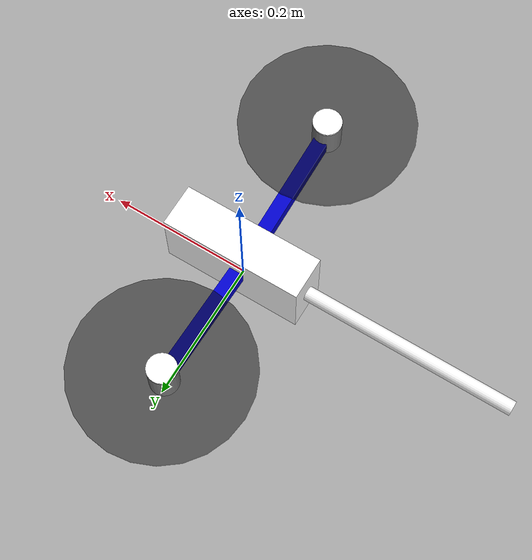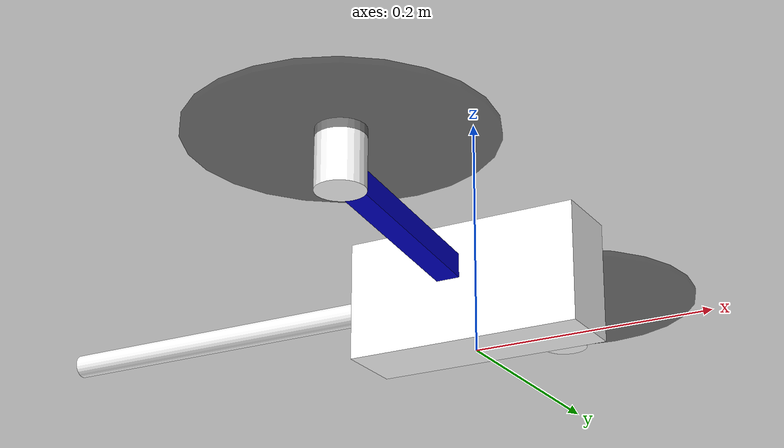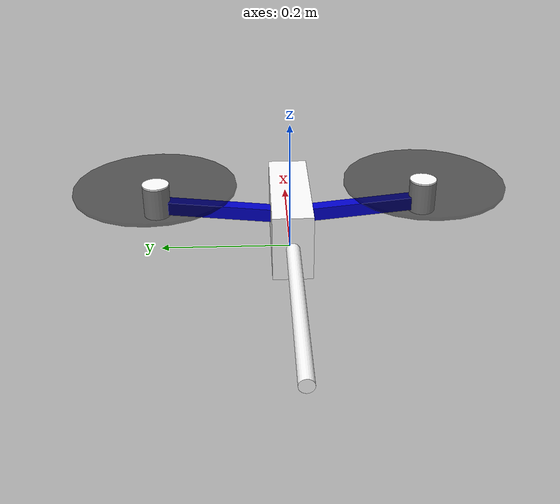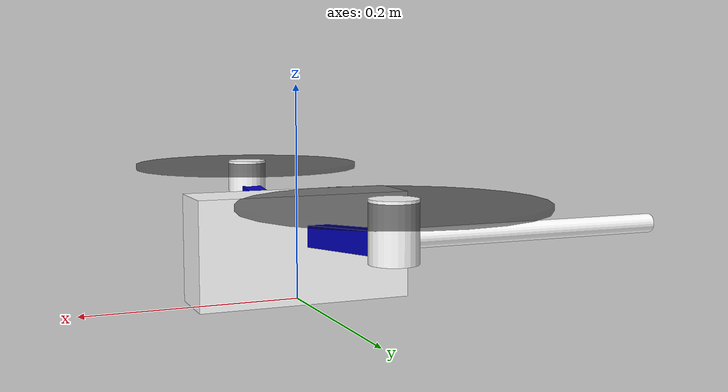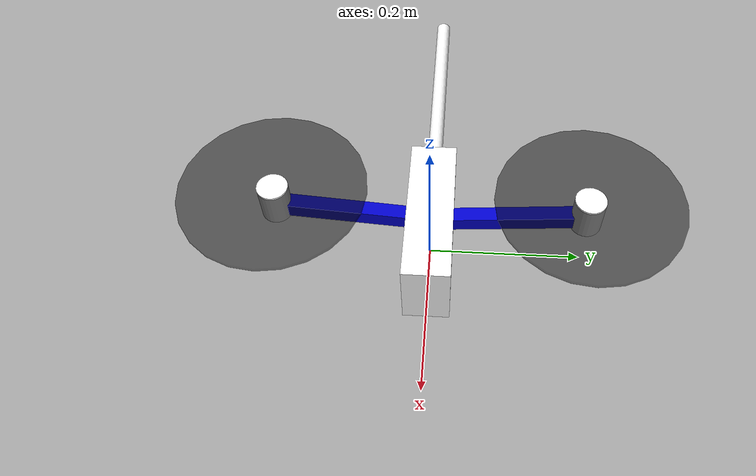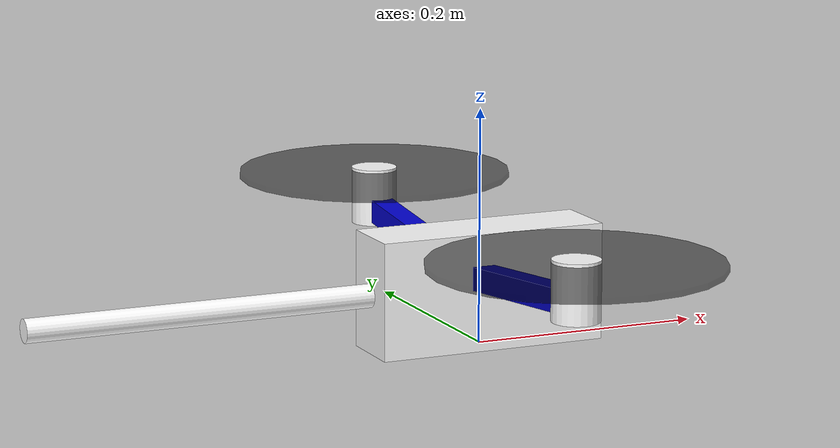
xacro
<?xml version="1.0"?>
<robot xmlns:xacro="http://wiki.ros.org/xacro" name="bicopter">

  <!-- BGN - Include -->
  <xacro:include filename="/server_ws/src/bicopter/urdf/robot_parameters.xacro" />
  <xacro:include filename="/server_ws/src/bicopter/urdf/links_joints.xacro" />
  <!-- END - Include -->

  <material name="blue">
    <color rgba="0 0 0.8 1"/>
  </material>

  <material name="white">
    <color rgba="1 1 1 1"/>
  </material>

  <material name="props">
    <color rgba="0 0 0 0.5"/>
  </material>

  <xacro:m_link_box name="${main_body}"
    origin_rpy="0 0 0" origin_xyz="0 0 0.05"
    mass="0.5"
    ixx="0.3" ixy="0" ixz="0"
    iyy="0.3" iyz="0"
    izz="0.3"
    size="0.2 0.06 0.10"
    material="white"
  />

  <xacro:m_link_cylinder name="${tail}"
    origin_rpy="0 1.5708 0" origin_xyz="0 0 0.0"
    mass="0.02085"
    ixx="0.00001" ixy="0" ixz="0"
    iyy="0.00001" iyz="0"
    izz="0.00001"
    radius="0.01" length="0.3"
    material="white"
  />

  <xacro:m_link_cylinder name="${prop_right}"
    origin_rpy="0 0 0" origin_xyz="0 0 0.0"
    mass="0.01"
    ixx="0.00001" ixy="0" ixz="0"
    iyy="0.00001" iyz="0"
    izz="0.00001"
    radius="0.12" length="0.005"
    material="props"
  />

  <xacro:m_link_cylinder name="${prop_left}"
    origin_rpy="0 0 0" origin_xyz="0 0 0.0"
    mass="0.01"
    ixx="0.00001" ixy="0" ixz="0"
    iyy="0.00001" iyz="0"
    izz="0.00001"
    radius="0.12" length="0.005"
    material="props"
  />

  <xacro:m_link_box name="${arm_left}"
    origin_rpy="0 -0.1 -1.5707" origin_xyz="-0.010 -0.1 0.02"
    mass="0.05"
    ixx="0.00001" ixy="0" ixz="0"
    iyy="0.00001" iyz="0"
    izz="0.00001"
    size="0.2 0.02 0.02"
    material="blue"
  />

  <xacro:m_link_box name="${arm_right}"
    origin_rpy="0 -0.1 1.5707" origin_xyz="-0.010 0.1 0.02"
    mass="0.05"
    ixx="0.00001" ixy="0" ixz="0"
    iyy="0.00001" iyz="0"
    izz="0.00001"
    size="0.2 0.02 0.02"
    material="blue"
  />

  <xacro:m_link_cylinder name="${motor_right}"
    origin_rpy="0 0 0" origin_xyz="0 0 0.0"
    mass="0.035"
    ixx="0.00001" ixy="0" ixz="0"
    iyy="0.00001" iyz="0"
    izz="0.00001"
    radius="0.02" length="0.05"
    material="white"
  />

  <xacro:m_link_cylinder name="${motor_left}"
    origin_rpy="0 0 0" origin_xyz="0 0 0.0"
    mass="0.035"
    ixx="0.00001" ixy="0" ixz="0"
    iyy="0.00001" iyz="0"
    izz="0.00001"
    radius="0.02" length="0.05"
    material="white"
  />

  <joint name="link_${main_body}_${tail}" type="fixed">
    <parent link="${main_body}"/>
    <child link="${tail}"/>
    <origin xyz="${-0.2/2-0.3/2} 0.0 0.05"/>
  </joint>

  <joint name="link_${main_body}_${arm_right}" type="fixed">
    <parent link="${main_body}"/>
    <child link="${arm_right}"/>
    <origin xyz="0 0.0 0.05"/>
  </joint>

  <joint name="link_${main_body}_${arm_left}" type="fixed">
    <parent link="${main_body}"/>
    <child link="${arm_left}"/>
    <origin xyz="0 0.0 0.05"/>
  </joint>

  <xacro:m_joint name="${arm_right}__${motor_right}" type="revolute"
    axis_xyz="0 1 0"
    origin_rpy="0 0 0" origin_xyz="-0.010 0.2 0.04"
    parent="${arm_right}" child="${motor_right}"
    limit_e="1000" limit_l="-0.5" limit_u="0.5" limit_v="0.5"
  />

  <xacro:m_joint name="${arm_left}__${motor_left}" type="revolute"
    axis_xyz="0 1 0"
    origin_rpy="0 0 0" origin_xyz="-0.010 -0.2 0.04"
    parent="${arm_left}" child="${motor_left}"
    limit_e="1000" limit_l="-0.5" limit_u="0.5" limit_v="0.5"
  />

  <xacro:m_axis name="${motor_left}__${prop_left}"
    axis_xyz="0 0 -1"
    origin_rpy="0 0 0" origin_xyz="0.00 -0.0 0.02"
    parent="${motor_left}" child="${prop_left}"
  />

  <xacro:m_axis name="${motor_right}__${prop_right}"
    axis_xyz="0 0 1"
    origin_rpy="0 0 0" origin_xyz="0.00  0.0 0.02"
    parent="${motor_right}" child="${prop_right}"
  />

  <gazebo reference="${main_body}">
    <material>Gazebo/Gray</material>
  </gazebo>

  <gazebo reference="${prop_right}">
    <material>Gazebo/Blue</material>
  </gazebo>

  <gazebo reference="${prop_left}">
    <material>Gazebo/Blue</material>
  </gazebo>

  <!-- This plugin will publish the joint_states for the selected joints
          (which robot_state_publisher can then use to broadcast the approprate tf). -->

  <gazebo>
    <plugin name="gazebo_ros_joint_state_publisher" filename="libgazebo_ros_joint_state_publisher.so">
      <update_rate>20</update_rate>
      <joint_name>${arm_left}__${motor_left}</joint_name>
      <joint_name>${arm_right}__${motor_right}</joint_name>
      <joint_name>${motor_left}__${prop_left}</joint_name>
      <joint_name>${motor_right}__${prop_right}</joint_name>
    </plugin>
  </gazebo>

  <!-- This plugin will read a JointTrajectory message from the /set_joint_trajectory topic
          and move the machine accordingly. It's a bit clunky but it works. -->
  <gazebo>
    <plugin name="gazebo_ros_joint_pose_trajectory"
      filename="libgazebo_ros_joint_pose_trajectory.so">
      <update_rate>20</update_rate>
    </plugin>
  </gazebo>

  <!-- Ros Gazebo force Plugin -->

  <gazebo>
    <plugin name="gazebo_ros_force" filename="libgazebo_ros_force.so">
      <ros>
        <!-- Add a namespace -->
        <namespace>/force</namespace>
        <!-- Remap the default topic -->
        <remapping>gazebo_ros_force:=${prop_right}</remapping>
      </ros>
      <force_frame>link</force_frame>
      <link_name>${motor_right}</link_name>
    </plugin>
  </gazebo>

  <gazebo>
    <plugin name="gazebo_ros_force" filename="libgazebo_ros_force.so">
      <ros>
        <!-- Add a namespace -->
        <namespace>/force</namespace>
        <!-- Remap the default topic -->
        <remapping>gazebo_ros_force:=${prop_left}</remapping>
      </ros>
      <force_frame>link</force_frame>
      <link_name>${motor_left}</link_name>
    </plugin>
  </gazebo>

  <gazebo reference="${main_body}">
    <gravity>true</gravity>
    <sensor name="imu_sensor" type="imu">
      <always_on>true</always_on>
      <update_rate>100</update_rate>
      <visualize>true</visualize>
      <topic>imu</topic>
      <plugin filename="libgazebo_ros_imu_sensor.so" name="imu_plugin">
        <topicName>imu</topicName>
        <bodyName>${main_body}</bodyName>
        <updateRateHZ>10.0</updateRateHZ>
        <gaussianNoise>0.0</gaussianNoise>
        <xyzOffset>0 0 0</xyzOffset>
        <rpyOffset>0 0 0</rpyOffset>
        <frameName>${main_body}</frameName>
        <initialOrientationAsReference>false</initialOrientationAsReference>
      </plugin>
      <pose>0 0 0 0 0 0</pose>
    </sensor>
  </gazebo>

</robot>

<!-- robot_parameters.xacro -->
<robot xmlns:xacro="http://www.ros.org/wiki/xacro">
  <xacro:property name="main_body" value="base_link" />
  <xacro:property name="arm_left" value="arm_left" />
  <xacro:property name="arm_right" value="arm_right" />
  <xacro:property name="motor_right" value="motor_right" />
  <xacro:property name="motor_left" value="motor_left" />
  <xacro:property name="prop_right" value="prop_right" />
  <xacro:property name="prop_left" value="prop_left" />
  <xacro:property name="tail" value="tail" />

</robot>

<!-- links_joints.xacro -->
<robot xmlns:xacro="http://www.ros.org/wiki/xacro">

  <xacro:macro name="m_joint" params="name type axis_xyz origin_rpy origin_xyz parent child limit_e limit_l limit_u limit_v">
    <joint name="${name}" type="${type}">
      <axis xyz="${axis_xyz}" />
      <limit effort="${limit_e}" lower="${limit_l}" upper="${limit_u}" velocity="${limit_v}" />
      <origin rpy="${origin_rpy}" xyz="${origin_xyz}" />
      <parent link="${parent}" />
      <child link="${child}" />
      <dynamics damping="10.0" friction="10.0"/>
    </joint>
  </xacro:macro>

  <xacro:macro name="m_axis" params="name axis_xyz origin_rpy origin_xyz parent child">
    <joint name="${name}" type="continuous">
      <axis xyz="${axis_xyz}" />
      <origin rpy="${origin_rpy}" xyz="${origin_xyz}" />
      <parent link="${parent}" />
      <child link="${child}" />
    </joint>
  </xacro:macro>

  <xacro:macro name="m_link_cylinder" params="name origin_xyz origin_rpy radius length mass ixx ixy ixz iyy iyz izz material">
    <link name="${name}">
      <inertial>
        <mass value="${mass}" />
        <origin rpy="${origin_rpy}" xyz="${origin_xyz}" />
        <inertia ixx="${ixx}" ixy="${ixy}" ixz="${ixz}" iyy="${iyy}" iyz="${iyz}" izz="${izz}" />
      </inertial>
      <collision>
        <origin rpy="${origin_rpy}" xyz="${origin_xyz}" />
        <geometry>
          <cylinder radius="${radius}" length="${length}" />
        </geometry>
      </collision>
      <visual>
        <origin rpy="${origin_rpy}" xyz="${origin_xyz}" />
        <geometry>
          <cylinder radius="${radius}" length="${length}" />
        </geometry>
        <material name="${material}"/>
      </visual>
    </link>
  </xacro:macro>

  <xacro:macro name="m_link_box" params="name origin_xyz origin_rpy size mass ixx ixy ixz iyy iyz izz material">
    <link name="${name}">
      <inertial>
        <mass value="${mass}" />
        <origin rpy="${origin_rpy}" xyz="${origin_xyz}" />
        <inertia ixx="${ixx}" ixy="${ixy}" ixz="${ixz}" iyy="${iyy}" iyz="${iyz}" izz="${izz}" />
      </inertial>
      <collision>
        <origin rpy="${origin_rpy}" xyz="${origin_xyz}" />
        <geometry>
          <box size="${size}" />
        </geometry>
      </collision>
      <visual>
        <origin rpy="${origin_rpy}" xyz="${origin_xyz}" />
        <geometry>
          <box size="${size}" />
        </geometry>
        <material name="${material}"/>
      </visual>
    </link>
  </xacro:macro>

  <xacro:macro name="m_link_mesh" params="name origin_xyz origin_rpy meshfile meshscale mass ixx ixy ixz iyy iyz izz">
    <link name="${name}">
      <inertial>
        <mass value="${mass}" />
        <origin rpy="${origin_rpy}" xyz="${origin_xyz}" />
        <inertia ixx="${ixx}" ixy="${ixy}" ixz="${ixz}" iyy="${iyy}" iyz="${iyz}" izz="${izz}" />
      </inertial>
      <collision>
        <origin rpy="${origin_rpy}" xyz="${origin_xyz}" />
        <geometry>
          <mesh filename="${meshfile}" scale="${meshscale}"/>
        </geometry>
      </collision>
      <visual>
        <origin rpy="${origin_rpy}" xyz="${origin_xyz}" />
        <geometry>
          <mesh filename="${meshfile}" scale="${meshscale}"/>
        </geometry>
        <material name="light_black"/>
      </visual>
    </link>
  </xacro:macro>

</robot>
